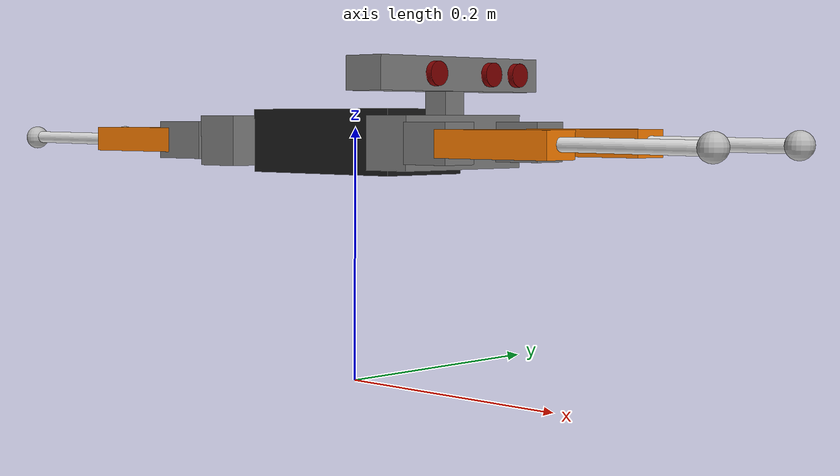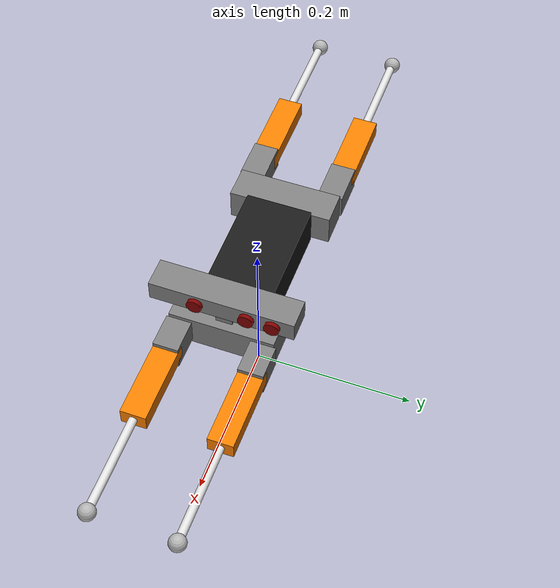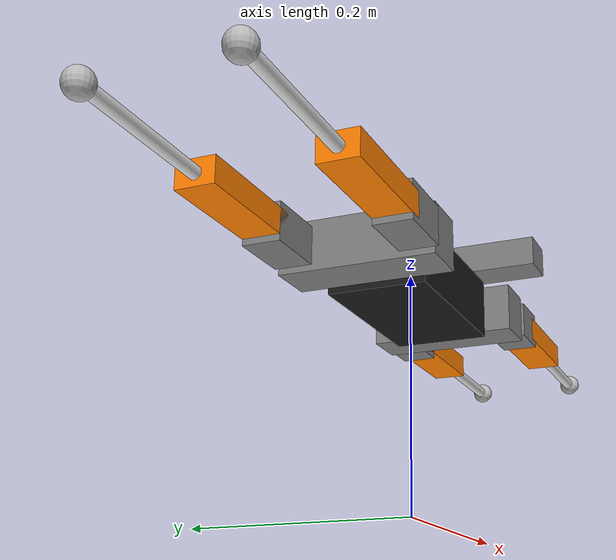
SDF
<?xml version="1.0" ?>
<sdf version='1.5'>
  <model name='LINKS'>
    <plugin name="PacerPlugin" filename="libPacerGazeboPlugin.so"/>
    <pose>0 0 0.19 0 -0 0</pose>
    <link name='BODY0'>
      <pose>0 0 0 0 -0 0</pose>
      <inertial>
        <mass>3.6</mass>
        <inertia>
          <ixx>0.005833</ixx>
          <ixy>0.0</ixy>
          <ixz>-0.0</ixz>
          <iyy>0.003033</iyy>
          <iyz>-0.0</iyz>
          <izz>0.008633</izz>
        </inertia>
      </inertial>

      <visual name='Head'>
        <pose>0.095 0 0.05 0 -0 0</pose>
        <geometry>
          <box>
            <size>0.035 0.17 0.025</size>
          </box>
        </geometry>
        <material>
          <diffuse>0.5 0.5 0.5 1</diffuse>
        </material>
      </visual>
      <visual name='Neck'>
        <pose>0.095 0 0.025 0 -0 0</pose>
        <geometry>
          <box>
            <size>0.02 0.02 0.04</size>
          </box>
        </geometry>
        <material>
          <diffuse>0.5 0.5 0.5 1</diffuse>
        </material>
      </visual>
      <visual name='REye'>
        <pose>0.11 -0.03 0.05 0 1.571 0</pose>
        <geometry>
          <cylinder>
            <radius>0.009</radius>
            <length>0.015</length>
          </cylinder>
        </geometry>
        <material>
          <ambient>0.2 0.2 0.2 1</ambient>
          <diffuse>0.5 0 0 1</diffuse>
          <specular>0.1 0.1 0.1 1</specular>
          <emissive>0 0 0 0</emissive>
        </material>
      </visual>
      <visual name='LEye1'>
        <pose>0.11 0.03 0.05 0 1.571 0</pose>
        <geometry>
          <cylinder>
            <radius>0.009</radius>
            <length>0.015</length>
          </cylinder>
        </geometry>
        <material>
          <ambient>0.2 0.2 0.2 1</ambient>
          <diffuse>0.5 0 0 1</diffuse>
          <specular>0.1 0.1 0.1 1</specular>
          <emissive>0 0 0 0</emissive>
        </material>
      </visual>
      <visual name='LEye2'>
        <pose>0.11 0.06 0.05 0 1.571 0</pose>
        <geometry>
          <cylinder>
            <radius>0.009</radius>
            <length>0.015</length>
          </cylinder>
        </geometry>
        <material>
          <ambient>0.2 0.2 0.2 1</ambient>
          <diffuse>0.5 0 0 1</diffuse>
          <specular>0.1 0.1 0.1 1</specular>
          <emissive>0 0 0 0</emissive>
        </material>
      </visual>

      <visual name='BODY1_visual'>
        <pose>0.095 0 0 0 -0 0</pose>
        <geometry>
          <box>
            <size>0.04 0.125 0.04</size>
          </box>
        </geometry>
        <material>
          <ambient>0.2 0.2 0.2 1</ambient>
          <diffuse>0.5 0.5 0.5 1</diffuse>
          <specular>0.1 0.1 0.1 1</specular>
          <emissive>0 0 0 0</emissive>
        </material>
      </visual>

      <visual name='BODY0_visual'>
        <geometry>
          <box>
            <size>0.15 0.08 0.05</size>
          </box>
        </geometry>
        <material>
          <ambient>0.2 0.2 0.2 1</ambient>
          <diffuse>0.1 0.1 0.1 1</diffuse>
          <specular>0.1 0.1 0.1 1</specular>
          <emissive>0 0 0 0</emissive>
        </material>
      </visual>
      <visual name='BODYN_visual'>
        <pose>-0.095 0 0 0 -0 0</pose>
        <geometry>
          <box>
            <size>0.04 0.125 0.04</size>
          </box>
        </geometry>
        <material>
          <ambient>0.2 0.2 0.2 1</ambient>
          <diffuse>0.5 0.5 0.5 1</diffuse>
          <specular>0.1 0.1 0.1 1</specular>
          <emissive>0 0 0 0</emissive>
        </material>
      </visual>

      <collision name='BODY0_collision'>
        <geometry>
          <box>
            <size>0.15 0.08 0.05</size>
          </box>
        </geometry>
      </collision>

    </link>

    <!-- =============================== LF leg =============================== -->
    <joint name='LF_X_1' type='revolute'>
      <pose>0.0 0.0 0 0 0 0</pose>
      <parent>BODY0</parent>
      <child>LF_LEG_1</child>
      <axis>
        <xyz>1 0 0</xyz>
        <limit>
          <lower>-0.5235987756</lower>
          <upper>5.4105206812</upper>
        </limit>
        <dynamics/>
      </axis>
    </joint>

    <link name='LF_LEG_1'>
      <pose>0.115 0.05 0 0 0. 0</pose>
      <inertial>
        <pose>0.020 0 0 0 0 0</pose>
        <mass>0.10</mass>
        <inertia>
          <ixx>1.5e-5</ixx>
          <ixy>0.0</ixy>
          <ixz>-0.0</ixz>
          <iyy>2.833e-5</iyy>
          <iyz>-0.0</iyz>
          <izz>2.833e-5</izz>
        </inertia>
      </inertial>

      <visual name='leg1_visual'>
        <pose>0.020 0 0 0 0 0</pose>
        <geometry>
          <box>
            <size>0.04 0.03 0.03</size>
          </box>
        </geometry>
        <material>
          <ambient>0.2 0.2 0.2 1</ambient>
          <diffuse>0.5 0.5 0.5 1</diffuse>
          <specular>0.1 0.1 0.1 1</specular>
          <emissive>0 0 0 0</emissive>
        </material>
      </visual>

    </link>

    <joint name='LF_Y_2' type='revolute'>
      <pose>0.0 0 0 0 0 0</pose>
      <parent>LF_LEG_1</parent>
      <child>LF_LEG_2</child>
      <axis>
        <xyz>0 1 0</xyz>
        <limit>
          <lower>-2.617993878</lower>
          <upper>2.617993878</upper>
        </limit>
        <dynamics/>
      </axis>

    </joint>

    <link name='LF_LEG_2'>
      <pose>0.155 0.05 0 0 0 0</pose>
      <inertial>
        <mass>0.10</mass>
        <inertia>
          <ixx>1.083e-5</ixx>
          <ixy>0.0</ixy>
          <ixz>-0.0</ixz>
          <iyy>0.0001233</iyy>
          <iyz>-0.0</iyz>
          <izz>0.001275</izz>
        </inertia>
      </inertial>

      <visual name='leg2_visual'>
        <pose>0.0395 0 0 0 0 0</pose>
        <geometry>
          <box>
            <size>0.1 0.03 0.02</size>
          </box>
        </geometry>
        <material>
          <ambient>0.2 0.2 0.2 1</ambient>
          <diffuse>1 0.5 0   1</diffuse>
          <specular>0.1 0.1 0.1 1</specular>
          <emissive>0 0 0 0</emissive>
        </material>
      </visual>

    </link>

    <joint name='LF_Y_3' type='revolute'>
      <pose>-0.129 0 0 0 0 0</pose>
      <parent>LF_LEG_2</parent>
      <child>LF_FOOT</child>
      <axis>
        <xyz>0 1 0</xyz>
        <limit>
          <lower>-2.617993878</lower>
          <upper>2.617993878</upper>
        </limit>
        <dynamics/>
      </axis>

    </joint>

    <link name='LF_FOOT'>
      <pose>0.361 0.05 0 0 0 0</pose>
      <inertial>
        <pose>-0.0645 0 0 0 0 0</pose>
        <mass>0.10</mass>
        <inertia>
          <ixx>5e-7</ixx>
          <ixy>-1.215e-10</ixy>
          <ixz>-0.0</ixz>
          <iyy>3.358e-5</iyy>
          <iyz>-0.0</iyz>
          <izz>3.358e-5</izz>
        </inertia>
      </inertial>

      <visual name='leg3_visual'>
        <pose>-0.0645 0 0 0 1.579 0</pose>
        <geometry>
          <cylinder>
            <radius>0.005</radius>
            <length>0.129</length>
          </cylinder>
        </geometry>
        <material>
          <ambient>0.2 0.2 0.2 1</ambient>
          <diffuse>0.9 0.9 0.9   1</diffuse>
          <specular>0.1 0.1 0.1 1</specular>
          <emissive>0 0 0 0</emissive>
        </material>
      </visual>

      <visual name='LF_FOOT_visual'>
        <pose>0 0 0 0 0 0</pose>
        <geometry>
          <sphere>
            <radius>0.01</radius>
          </sphere>
        </geometry>
      </visual>

      <collision name='LF_FOOT_collision'>
        <pose>0 0 0 0 0 0</pose>
        <geometry>
          <sphere>
            <radius>0.01</radius>
          </sphere>
        </geometry>
        <surface>
          <restitution_coefficient>0</restitution_coefficient>
          <friction>
            <ode>
              <mu>100</mu>
              <mu2>100</mu2>
            </ode>
          </friction>
        </surface>
      </collision>

      <sensor name='LF_FOOT_contact' type='contact'>
        <contact>
          <collision>LF_FOOT_collision</collision>
        </contact>
        <update_rate>1000</update_rate>
      </sensor>
    </link>

    <!-- =============================== RF leg =============================== -->
    <joint name='RF_X_1' type='revolute'>
      <pose>-0.025 0 0 0 0 0</pose>
      <parent>BODY0</parent>
      <child>RF_LEG_1</child>
      <axis>
        <xyz>1 0 0</xyz>
        <limit>
          <lower>-5.4105206812</lower>
          <upper>0.5235987756</upper>
        </limit>
        <dynamics/>
      </axis>

    </joint>

    <link name='RF_LEG_1'>
      <pose>0.115 -0.05 0 0 0 0</pose>
      <inertial>
        <mass>0.10</mass>
        <inertia>
          <ixx>1.5e-5</ixx>
          <ixy>0.0</ixy>
          <ixz>-0.0</ixz>
          <iyy>2.833e-5</iyy>
          <iyz>-0.0</iyz>
          <izz>2.833e-5</izz>
        </inertia>
      </inertial>

      <visual name='leg1_visual'>
        <pose>0.020 0 0 0 0 0</pose>
        <geometry>
          <box>
            <size>0.04 0.03 0.03</size>
          </box>
        </geometry>
        <material>
          <ambient>0.2 0.2 0.2 1</ambient>
          <diffuse>0.5 0.5 0.5 1</diffuse>
          <specular>0.1 0.1 0.1 1</specular>
          <emissive>0 0 0 0</emissive>
        </material>
      </visual>
    </link>

    <joint name='RF_Y_2' type='revolute'>
      <pose>0.0 0 0 0 0 0</pose>
      <parent>RF_LEG_1</parent>
      <child>RF_LEG_2</child>
      <axis>
        <xyz>0 -1 0</xyz>
        <limit>
          <lower>-2.617993878</lower>
          <upper>2.617993878</upper>
        </limit>
        <dynamics/>
      </axis>
    </joint>

    <link name='RF_LEG_2'>
      <pose>0.155 -0.05 0 0 0 0</pose>
      <inertial>
        <mass>0.10</mass>
        <inertia>
          <ixx>1.083e-5</ixx>
          <ixy>0.0</ixy>
          <ixz>-0.0</ixz>
          <iyy>0.0001233</iyy>
          <iyz>-0.0</iyz>
          <izz>0.001275</izz>
        </inertia>
      </inertial>

      <visual name='leg2_visual'>
        <pose>0.0395 0 0 0 0 0</pose>
        <geometry>
          <box>
            <size>0.1 0.03 0.02</size>
          </box>
        </geometry>
        <material>
          <ambient>0.2 0.2 0.2 1</ambient>
          <diffuse>1 0.5 0   1</diffuse>
          <specular>0.1 0.1 0.1 1</specular>
          <emissive>0 0 0 0</emissive>
        </material>
      </visual>

    </link>

    <joint name='RF_Y_3' type='revolute'>
      <pose>-0.129 0 0 0 0 0</pose>
      <parent>RF_LEG_2</parent>
      <child>RF_FOOT</child>
      <axis>
        <xyz>0 -1 0</xyz>
        <limit>
          <lower>-2.617993878</lower>
          <upper>2.617993878</upper>
        </limit>
        <dynamics/>
      </axis>
    </joint>

    <link name='RF_FOOT'>
      <pose>0.361 -0.05 0 0 0 0</pose>
      <inertial>
        <pose>-0.0645 0 0 0 0 0</pose>
        <mass>0.10</mass>
        <inertia>
          <ixx>5e-7</ixx>
          <ixy>-1.215e-10</ixy>
          <ixz>-0.0</ixz>
          <iyy>3.358e-5</iyy>
          <iyz>-0.0</iyz>
          <izz>3.358e-5</izz>
        </inertia>
      </inertial>

      <visual name='leg3_visual'>
        <pose>-0.0645 0 0 0 1.579 0</pose>
        <geometry>
          <cylinder>
            <radius>0.005</radius>
            <length>0.129</length>
          </cylinder>
        </geometry>
        <material>
          <ambient>0.2 0.2 0.2 1</ambient>
          <diffuse>0.9 0.9 0.9   1</diffuse>
          <specular>0.1 0.1 0.1 1</specular>
          <emissive>0 0 0 0</emissive>
        </material>
      </visual>

      <visual name='RF_FOOT_visual'>
        <pose>0 0 0 0 0 0</pose>
        <geometry>
          <sphere>
            <radius>0.01</radius>
          </sphere>
        </geometry>
      </visual>

      <collision name='RF_FOOT_collision'>
        <pose>0 0 0 0 0 0</pose>
        <geometry>
          <sphere>
            <radius>0.01</radius>
          </sphere>
        </geometry>
        <surface>
          <restitution_coefficient>0</restitution_coefficient>
          <friction>
            <ode>
              <mu>100</mu>
              <mu2>100</mu2>
            </ode>
          </friction>
        </surface>
      </collision>

      <sensor name='RF_FOOT_contact' type='contact'>
        <contact>
          <collision>RF_FOOT_collision</collision>
        </contact>
        <update_rate>1000</update_rate>
      </sensor>
    </link>

    <!-- =============================== LH leg =============================== -->
    <joint name='LH_X_1' type='revolute'>
      <pose>0.0 0 0 0 0 0</pose>
      <parent>BODY0</parent>
      <child>LH_LEG_1</child>
      <axis>
        <xyz>-1 0 0</xyz>
        <limit>
          <lower>-5.4105206812</lower>
          <upper>0.5235987756</upper>
        </limit>
        <dynamics/>
      </axis>

    </joint>

    <link name='LH_LEG_1'>
      <pose>-0.115 0.05 0 0 0 0</pose>
      <inertial>
        <pose>-0.0255 0 0 0 0 0</pose>
        <mass>0.10</mass>
        <inertia>
          <ixx>1.5e-5</ixx>
          <ixy>0.0</ixy>
          <ixz>-0.0</ixz>
          <iyy>2.833e-5</iyy>
          <iyz>-0.0</iyz>
          <izz>2.833e-5</izz>
        </inertia>
      </inertial>

      <visual name='leg1_visual'>
        <pose>-0.0255 0 0 0 0 0</pose>
        <geometry>
          <box>
            <size>0.051 0.03 0.03</size>
          </box>
        </geometry>
        <material>
          <ambient>0.2 0.2 0.2 1</ambient>
          <diffuse>0.5 0.5 0.5 1</diffuse>
          <specular>0.1 0.1 0.1 1</specular>
          <emissive>0 0 0 0</emissive>
        </material>
      </visual>
    </link>

    <joint name='LH_Y_2' type='revolute'>
      <pose>0 0 0 0 0 0</pose>
      <parent>LH_LEG_1</parent>
      <child>LH_LEG_2</child>
      <axis>
        <xyz>0 1 0</xyz>
        <limit>
          <lower>-2.617993878</lower>
          <upper>2.617993878</upper>
        </limit>
        <dynamics/>
      </axis>

    </joint>

    <link name='LH_LEG_2'>
      <pose>-0.166 0.05 0 0 0 0</pose>
      <inertial>
        <pose>-0.0385 0 0 0 0 0</pose>
        <mass>0.10</mass>
        <inertia>
          <ixx>1.083e-5</ixx>
          <ixy>0.0</ixy>
          <ixz>-0.0</ixz>
          <iyy>0.0001233</iyy>
          <iyz>-0.0</iyz>
          <izz>0.001275</izz>
        </inertia>
      </inertial>

      <visual name='leg2_visual'>
        <pose>-0.0385 0 0 0 0 0</pose>
        <geometry>
          <box>
            <size>0.1 0.03 0.02</size>
          </box>
        </geometry>
        <material>
          <ambient>0.2 0.2 0.2 1</ambient>
          <diffuse>1 0.5 0   1</diffuse>
          <specular>0.1 0.1 0.1 1</specular>
          <emissive>0 0 0 0</emissive>
        </material>
      </visual>

    </link>

    <joint name='LH_Y_3' type='revolute'>
      <pose>0.129 0 0 0 0 0</pose>
      <parent>LH_LEG_2</parent>
      <child>LH_FOOT</child>
      <axis>
        <xyz>0 1 0</xyz>
        <limit>
          <lower>-2.617993878</lower>
          <upper>2.617993878</upper>
        </limit>
        <dynamics/>
      </axis>

    </joint>

    <link name='LH_FOOT'>
      <pose>-0.372 0.05 0 0 0 0</pose>
      <inertial>
        <pose>0.0645 0 0 0 0 0</pose>
        <mass>0.10</mass>
        <inertia>
          <ixx>5e-7</ixx>
          <ixy>-1.215e-10</ixy>
          <ixz>-0.0</ixz>
          <iyy>3.358e-5</iyy>
          <iyz>-0.0</iyz>
          <izz>3.358e-5</izz>
        </inertia>
      </inertial>

      <visual name='leg3_visual'>
        <pose>0.0645 0 0 0 1.579 0</pose>
        <geometry>
          <cylinder>
            <radius>0.005</radius>
            <length>0.129</length>
          </cylinder>
        </geometry>
        <material>
          <ambient>0.2 0.2 0.2 1</ambient>
          <diffuse>0.9 0.9 0.9   1</diffuse>
          <specular>0.1 0.1 0.1 1</specular>
          <emissive>0 0 0 0</emissive>
        </material>
      </visual>

      <visual name='LH_FOOT_visual'>
        <pose>0 0 0 0 0 0</pose>
        <geometry>
          <sphere>
            <radius>0.01</radius>
          </sphere>
        </geometry>
      </visual>

      <collision name='LH_FOOT_collision'>
        <pose>0 0 0 0 0 0</pose>
        <geometry>
          <sphere>
            <radius>0.01</radius>
          </sphere>
        </geometry>
        <surface>
          <restitution_coefficient>0</restitution_coefficient>
          <friction>
            <ode>
              <mu>100</mu>
              <mu2>100</mu2>
            </ode>
          </friction>
        </surface>
      </collision>

      <sensor name='LH_FOOT_contact' type='contact'>
        <contact>
          <collision>LH_FOOT_collision</collision>
        </contact>
        <update_rate>1000</update_rate>
      </sensor>
    </link>

    <!-- =============================== RH leg =============================== -->
    <joint name='RH_X_1' type='revolute'>
      <pose>0 0 0 0 0 0</pose>
      <parent>BODY0</parent>
      <child>RH_LEG_1</child>
      <axis>
        <xyz>-1 0 0</xyz>
        <limit>
          <lower>-0.5235987756</lower>
          <upper>5.4105206812</upper>
        </limit>
        <dynamics/>
      </axis>
    </joint>

    <link name='RH_LEG_1'>
      <pose>-0.115 -0.05 0 0 0 0</pose>
      <inertial>
        <pose>-0.0255 0 0 0 0 0</pose>
        <mass>0.10</mass>
        <inertia>
          <ixx>1.5e-5</ixx>
          <ixy>0.0</ixy>
          <ixz>-0.0</ixz>
          <iyy>2.833e-5</iyy>
          <iyz>-0.0</iyz>
          <izz>2.833e-5</izz>
        </inertia>
      </inertial>

      <visual name='leg1_visual'>
        <pose>-0.0255 0 0 0 0 0</pose>
        <geometry>
          <box>
            <size>0.051 0.03 0.03</size>
          </box>
        </geometry>
        <material>
          <ambient>0.2 0.2 0.2 1</ambient>
          <diffuse>0.5 0.5 0.5 1</diffuse>
          <specular>0.1 0.1 0.1 1</specular>
          <emissive>0 0 0 0</emissive>
        </material>
      </visual>

    </link>

    <joint name='RH_Y_2' type='revolute'>
      <pose>0 0 0 0 0 0</pose>
      <parent>RH_LEG_1</parent>
      <child>RH_LEG_2</child>
      <axis>
        <xyz>0 -1 0</xyz>
        <limit>
          <lower>-2.617993878</lower>
          <upper>2.617993878</upper>
        </limit>
        <dynamics/>
      </axis>

    </joint>

    <link name='RH_LEG_2'>
      <pose>-0.166 -0.05 0 0 0 0</pose>
      <inertial>
        <pose>-0.0385 0 0 0 0 0</pose>
        <mass>0.10</mass>
        <inertia>
          <ixx>1.083e-5</ixx>
          <ixy>0.0</ixy>
          <ixz>-0.0</ixz>
          <iyy>0.0001233</iyy>
          <iyz>-0.0</iyz>
          <izz>0.001275</izz>
        </inertia>
      </inertial>

      <visual name='leg2_visual'>
        <pose>-0.0385 0 0 0 0 0</pose>
        <geometry>
          <box>
            <size>0.1 0.03 0.02</size>
          </box>
        </geometry>
        <material>
          <ambient>0.2 0.2 0.2 1</ambient>
          <diffuse>1 0.5 0   1</diffuse>
          <specular>0.1 0.1 0.1 1</specular>
          <emissive>0 0 0 0</emissive>
        </material>
      </visual>

    </link>

    <joint name='RH_Y_3' type='revolute'>
      <pose>0.129 0 0 0 0 0</pose>
      <parent>RH_LEG_2</parent>
      <child>RH_FOOT</child>
      <axis>
        <xyz>0 -1 0</xyz>
        <limit>
          <lower>-2.617993878</lower>
          <upper>2.617993878</upper>
        </limit>
        <dynamics/>
      </axis>

    </joint>

    <link name='RH_FOOT'>
      <pose>-0.372 -0.05 0 0 0 0</pose>
      <inertial>
        <pose>0.0645 0 0 0 0 0</pose>
        <mass>0.10</mass>
        <inertia>
          <ixx>5e-7</ixx>
          <ixy>-1.215e-10</ixy>
          <ixz>-0.0</ixz>
          <iyy>3.358e-5</iyy>
          <iyz>-0.0</iyz>
          <izz>3.358e-5</izz>
        </inertia>
      </inertial>

      <visual name='leg3_visual'>
        <pose>0.0645 0 0 0 1.579 0</pose>
        <geometry>
          <cylinder>
            <radius>0.005</radius>
            <length>0.129</length>
          </cylinder>
        </geometry>
        <material>
          <ambient>0.2 0.2 0.2 1</ambient>
          <diffuse>0.9 0.9 0.9   1</diffuse>
          <specular>0.1 0.1 0.1 1</specular>
          <emissive>0 0 0 0</emissive>
        </material>
      </visual>

      <visual name='RH_FOOT_visual'>
        <pose>0 0 0 0 0 0</pose>
        <geometry>
          <sphere>
            <radius>0.01</radius>
          </sphere>
        </geometry>
      </visual>

      <collision name='RH_FOOT_collision'>
        <pose>0 0 0 0 0 0</pose>
        <geometry>
          <sphere>
            <radius>0.01</radius>
          </sphere>
        </geometry>
        <surface>
          <restitution_coefficient>0</restitution_coefficient>
          <friction>
            <ode>
              <mu>100</mu>
              <mu2>100</mu2>
            </ode>
          </friction>
        </surface>
      </collision>

      <sensor name='RH_FOOT_contact' type='contact'>
        <contact>
          <collision>RH_FOOT_collision</collision>
        </contact>
        <update_rate>1000</update_rate>
      </sensor>
    </link>
  </model>
</sdf>
